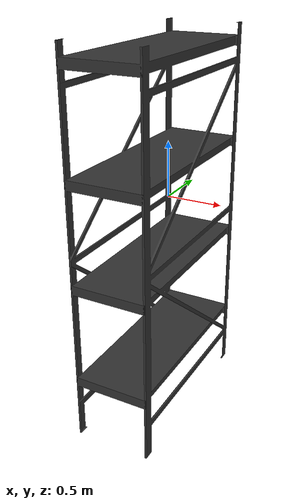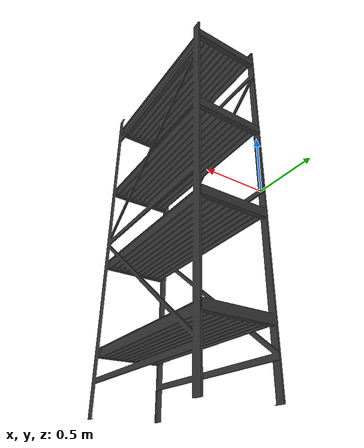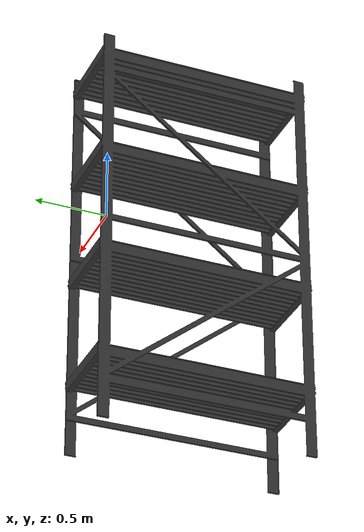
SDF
<?xml version="1.0"?>
<sdf version="1.6">
  <model name="industry_shelving">
    <static>true</static>
    <link name="link">
      <visual name="visual">
        <geometry>
          <mesh>
            <uri>model://industry_shelving/meshes/industry_shelving.stl</uri>
            <scale>0.1 0.5 0.5</scale>
          </mesh>
        </geometry>
        <material>
          <ambient>0.1 0.5 0.5 1</ambient>
          <diffuse>0.2 0.2 0.2 1</diffuse>
          <specular>0.05 0.05 0.05 1</specular>
        </material>
      </visual>

      <collision name="collision">
        <geometry>
          <mesh>
            <uri>model://industry_shelving/meshes/industry_shelving.stl</uri>
            <scale>0.1 0.5 0.5</scale>
          </mesh>
        </geometry>
        <surface>
          <contact>
            <ode/>
          </contact>
          <bounce/>
          <friction>
            <ode/>
          </friction>
        </surface>
      </collision>
    </link>
  </model>
</sdf>
